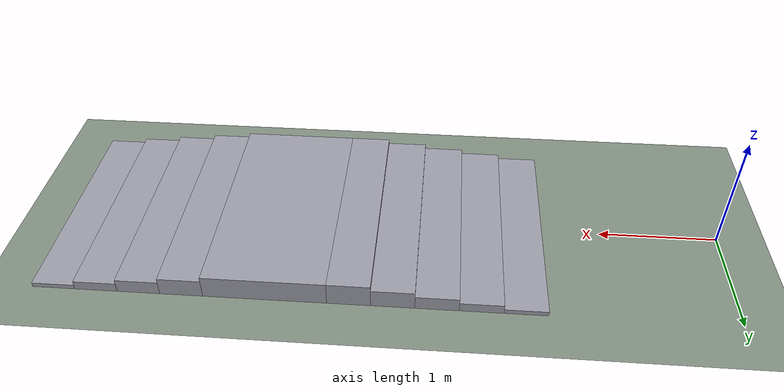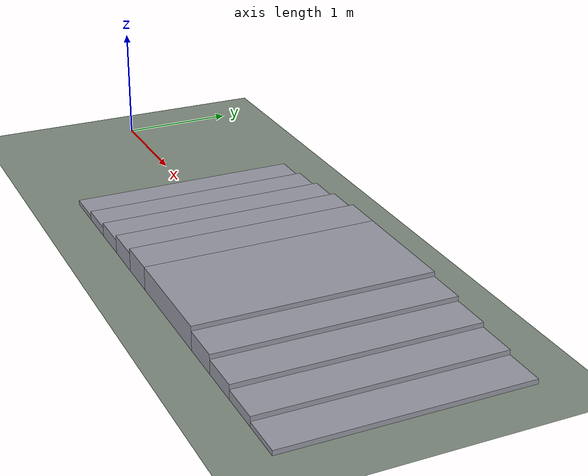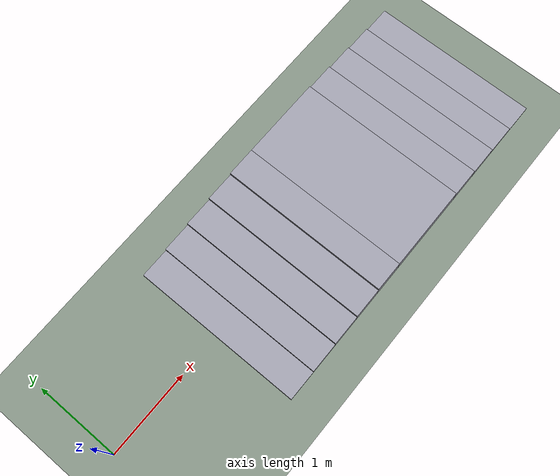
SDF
<?xml version="1.0"?>
<sdf version="1.10">
  <world name="hyperdog">
    <physics name="1ms" type="dart">
      <max_step_size>0.001</max_step_size>
      <real_time_factor>1.0</real_time_factor>
    </physics>
    <plugin filename="gz-sim-physics-system" name="gz::sim::systems::Physics"/>
    <plugin filename="gz-sim-user-commands-system" name="gz::sim::systems::UserCommands"/>
    <plugin filename="gz-sim-scene-broadcaster-system" name="gz::sim::systems::SceneBroadcaster"/>
    <plugin filename="gz-sim-sensors-system" name="gz::sim::systems::Sensors">
      <render_engine>ogre2</render_engine>
    </plugin>
    <plugin filename="gz-sim-imu-system" name="gz::sim::systems::Imu"/>
    <plugin filename="gz-sim-contact-system" name="gz::sim::systems::Contact"/>
    <plugin filename="gz-sim-apply-link-wrench-system" name="gz::sim::systems::ApplyLinkWrench"/>

    <gravity>0 0 -9.81</gravity>
    <scene>
      <ambient>0.6 0.6 0.6 1</ambient>
      <background>0.75 0.85 0.95 1</background>
      <grid>false</grid>
    </scene>
    <light type="directional" name="sun">
      <cast_shadows>true</cast_shadows>
      <pose>0 0 10 0 0 0</pose>
      <diffuse>0.9 0.9 0.9 1</diffuse>
      <specular>0.2 0.2 0.2 1</specular>
      <direction>-0.5 0.2 -0.9</direction>
    </light>

    <model name="ground_plane">
      <static>true</static>
      <link name="link">
        <collision name="collision">
          <geometry><plane><normal>0 0 1</normal><size>200 200</size></plane></geometry>
          <surface><friction><ode><mu>1.0</mu><mu2>1.0</mu2></ode></friction></surface>
        </collision>
        <visual name="visual">
          <geometry><plane><normal>0 0 1</normal><size>200 200</size></plane></geometry>
          <material><ambient>0.5 0.55 0.5 1</ambient><diffuse>0.5 0.55 0.5 1</diffuse></material>
        </visual>
      </link>
    </model>
    <model name="step_up_0">
      <static>true</static>
      <pose>1.675 0.000 0.0200 0 0 0.000</pose>
      <link name="link">
        <collision name="collision"><geometry><box><size>0.350 2.000 0.0400</size></box></geometry>
          <surface><friction><ode><mu>1.0</mu><mu2>1.0</mu2></ode></friction></surface></collision>
        <visual name="visual"><geometry><box><size>0.350 2.000 0.0400</size></box></geometry>
          <material><ambient>0.6 0.6 0.65 1</ambient><diffuse>0.6 0.6 0.65 1</diffuse></material></visual>
      </link>
    </model>
    <model name="step_up_1">
      <static>true</static>
      <pose>2.025 0.000 0.0400 0 0 0.000</pose>
      <link name="link">
        <collision name="collision"><geometry><box><size>0.350 2.000 0.0800</size></box></geometry>
          <surface><friction><ode><mu>1.0</mu><mu2>1.0</mu2></ode></friction></surface></collision>
        <visual name="visual"><geometry><box><size>0.350 2.000 0.0800</size></box></geometry>
          <material><ambient>0.6 0.6 0.65 1</ambient><diffuse>0.6 0.6 0.65 1</diffuse></material></visual>
      </link>
    </model>
    <model name="step_up_2">
      <static>true</static>
      <pose>2.375 0.000 0.0600 0 0 0.000</pose>
      <link name="link">
        <collision name="collision"><geometry><box><size>0.350 2.000 0.1200</size></box></geometry>
          <surface><friction><ode><mu>1.0</mu><mu2>1.0</mu2></ode></friction></surface></collision>
        <visual name="visual"><geometry><box><size>0.350 2.000 0.1200</size></box></geometry>
          <material><ambient>0.6 0.6 0.65 1</ambient><diffuse>0.6 0.6 0.65 1</diffuse></material></visual>
      </link>
    </model>
    <model name="step_up_3">
      <static>true</static>
      <pose>2.725 0.000 0.0800 0 0 0.000</pose>
      <link name="link">
        <collision name="collision"><geometry><box><size>0.350 2.000 0.1600</size></box></geometry>
          <surface><friction><ode><mu>1.0</mu><mu2>1.0</mu2></ode></friction></surface></collision>
        <visual name="visual"><geometry><box><size>0.350 2.000 0.1600</size></box></geometry>
          <material><ambient>0.6 0.6 0.65 1</ambient><diffuse>0.6 0.6 0.65 1</diffuse></material></visual>
      </link>
    </model>
    <model name="step_up_4">
      <static>true</static>
      <pose>3.075 0.000 0.1000 0 0 0.000</pose>
      <link name="link">
        <collision name="collision"><geometry><box><size>0.350 2.000 0.2000</size></box></geometry>
          <surface><friction><ode><mu>1.0</mu><mu2>1.0</mu2></ode></friction></surface></collision>
        <visual name="visual"><geometry><box><size>0.350 2.000 0.2000</size></box></geometry>
          <material><ambient>0.6 0.6 0.65 1</ambient><diffuse>0.6 0.6 0.65 1</diffuse></material></visual>
      </link>
    </model>
    <model name="landing">
      <static>true</static>
      <pose>3.750 0.000 0.1000 0 0 0.000</pose>
      <link name="link">
        <collision name="collision"><geometry><box><size>1.000 2.000 0.2000</size></box></geometry>
          <surface><friction><ode><mu>1.0</mu><mu2>1.0</mu2></ode></friction></surface></collision>
        <visual name="visual"><geometry><box><size>1.000 2.000 0.2000</size></box></geometry>
          <material><ambient>0.6 0.6 0.65 1</ambient><diffuse>0.6 0.6 0.65 1</diffuse></material></visual>
      </link>
    </model>
    <model name="step_down_0">
      <static>true</static>
      <pose>4.425 0.000 0.0800 0 0 0.000</pose>
      <link name="link">
        <collision name="collision"><geometry><box><size>0.350 2.000 0.1600</size></box></geometry>
          <surface><friction><ode><mu>1.0</mu><mu2>1.0</mu2></ode></friction></surface></collision>
        <visual name="visual"><geometry><box><size>0.350 2.000 0.1600</size></box></geometry>
          <material><ambient>0.6 0.6 0.65 1</ambient><diffuse>0.6 0.6 0.65 1</diffuse></material></visual>
      </link>
    </model>
    <model name="step_down_1">
      <static>true</static>
      <pose>4.775 0.000 0.0600 0 0 0.000</pose>
      <link name="link">
        <collision name="collision"><geometry><box><size>0.350 2.000 0.1200</size></box></geometry>
          <surface><friction><ode><mu>1.0</mu><mu2>1.0</mu2></ode></friction></surface></collision>
        <visual name="visual"><geometry><box><size>0.350 2.000 0.1200</size></box></geometry>
          <material><ambient>0.6 0.6 0.65 1</ambient><diffuse>0.6 0.6 0.65 1</diffuse></material></visual>
      </link>
    </model>
    <model name="step_down_2">
      <static>true</static>
      <pose>5.125 0.000 0.0400 0 0 0.000</pose>
      <link name="link">
        <collision name="collision"><geometry><box><size>0.350 2.000 0.0800</size></box></geometry>
          <surface><friction><ode><mu>1.0</mu><mu2>1.0</mu2></ode></friction></surface></collision>
        <visual name="visual"><geometry><box><size>0.350 2.000 0.0800</size></box></geometry>
          <material><ambient>0.6 0.6 0.65 1</ambient><diffuse>0.6 0.6 0.65 1</diffuse></material></visual>
      </link>
    </model>
    <model name="step_down_3">
      <static>true</static>
      <pose>5.475 0.000 0.0200 0 0 0.000</pose>
      <link name="link">
        <collision name="collision"><geometry><box><size>0.350 2.000 0.0400</size></box></geometry>
          <surface><friction><ode><mu>1.0</mu><mu2>1.0</mu2></ode></friction></surface></collision>
        <visual name="visual"><geometry><box><size>0.350 2.000 0.0400</size></box></geometry>
          <material><ambient>0.6 0.6 0.65 1</ambient><diffuse>0.6 0.6 0.65 1</diffuse></material></visual>
      </link>
    </model>
  </world>
</sdf>
